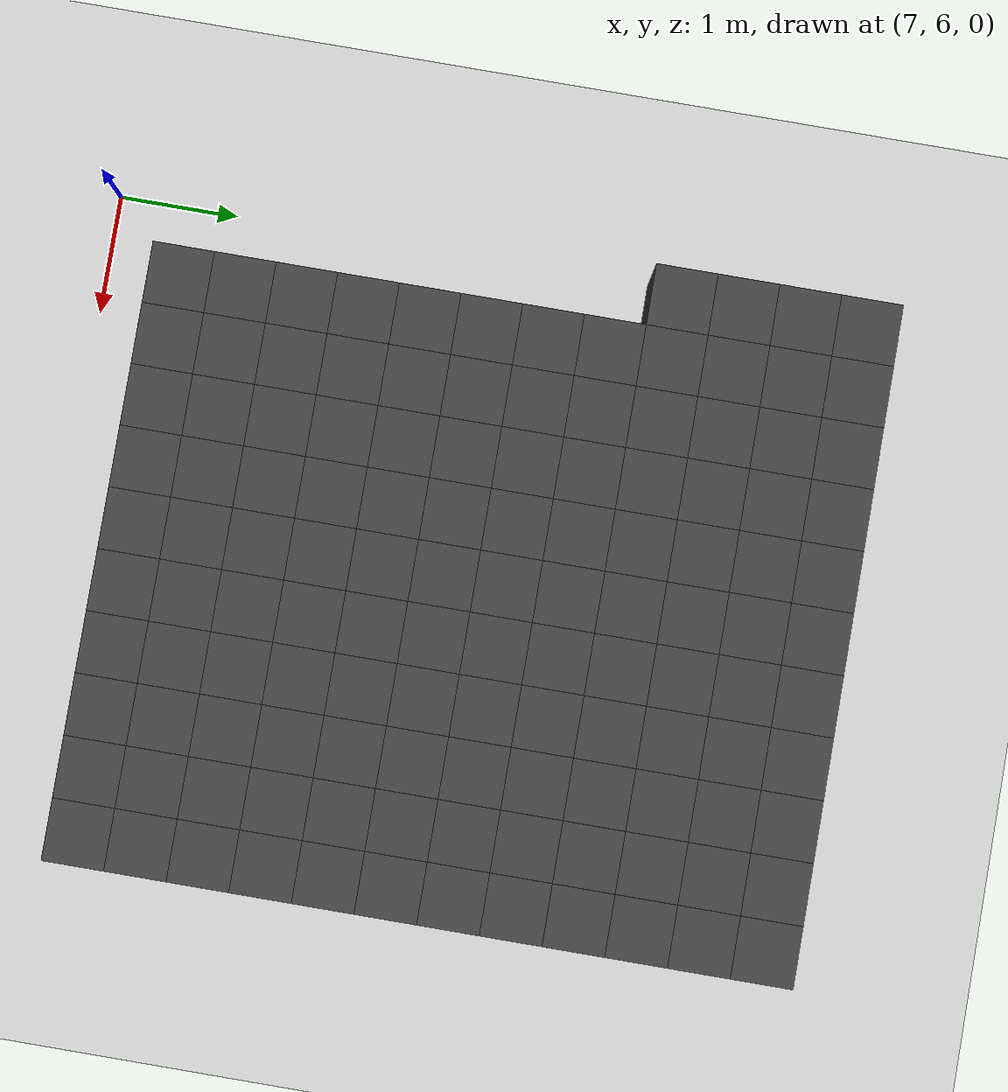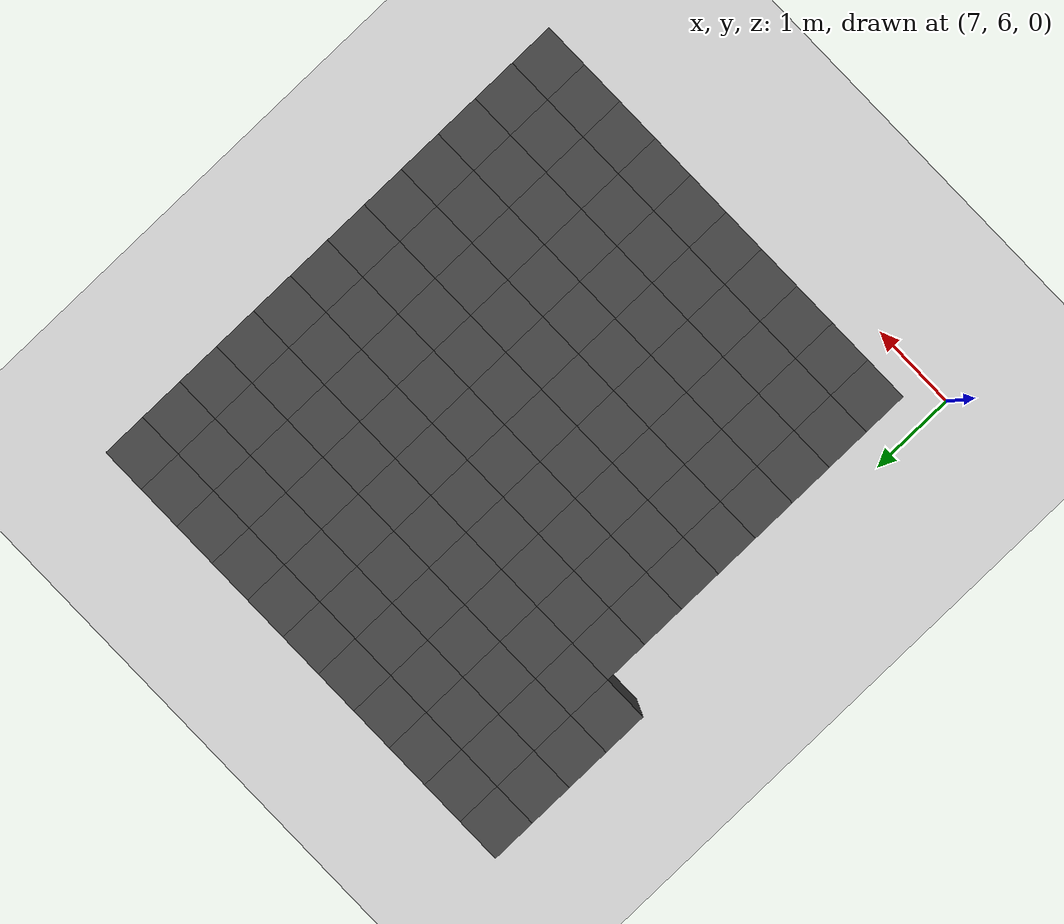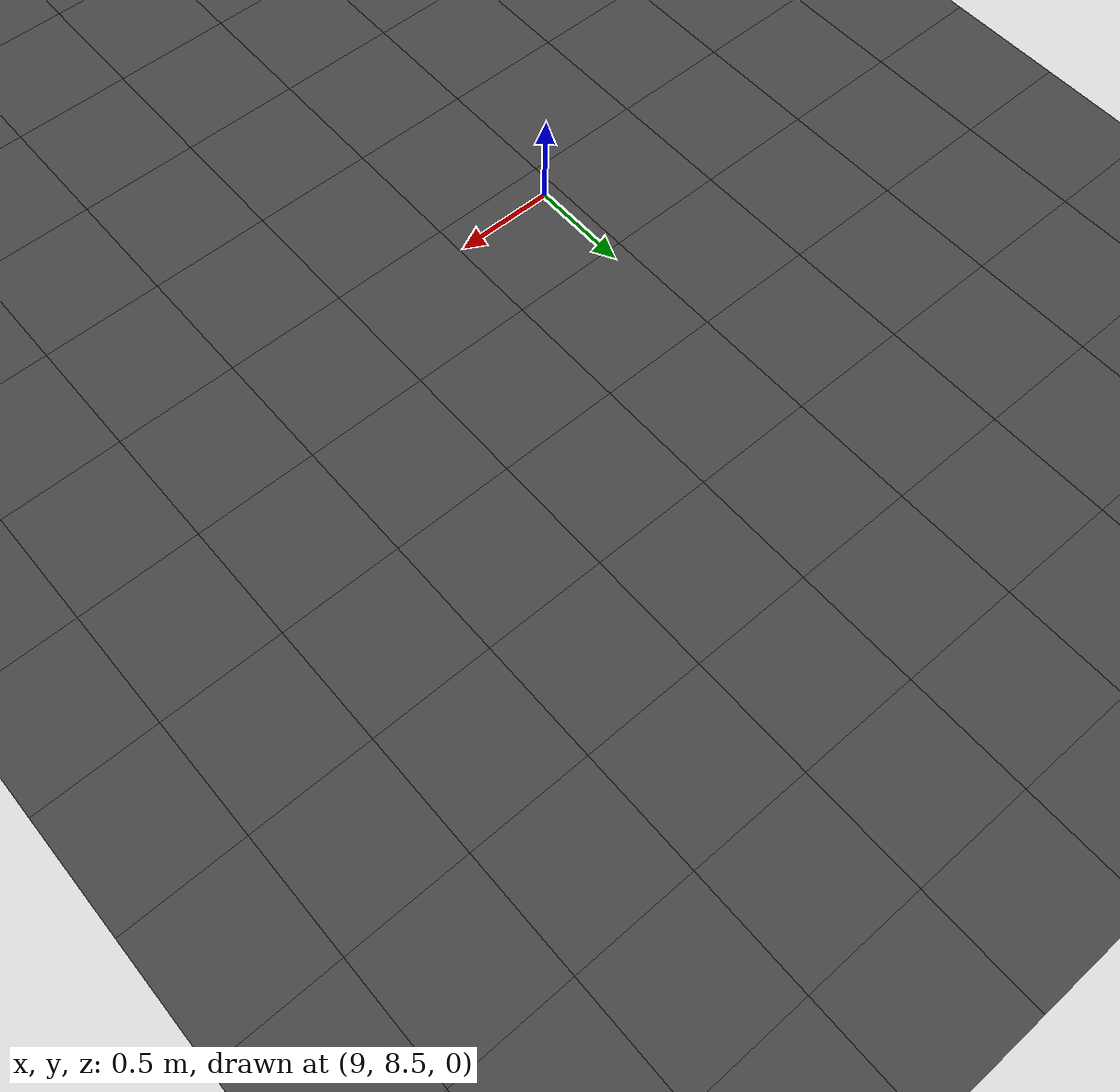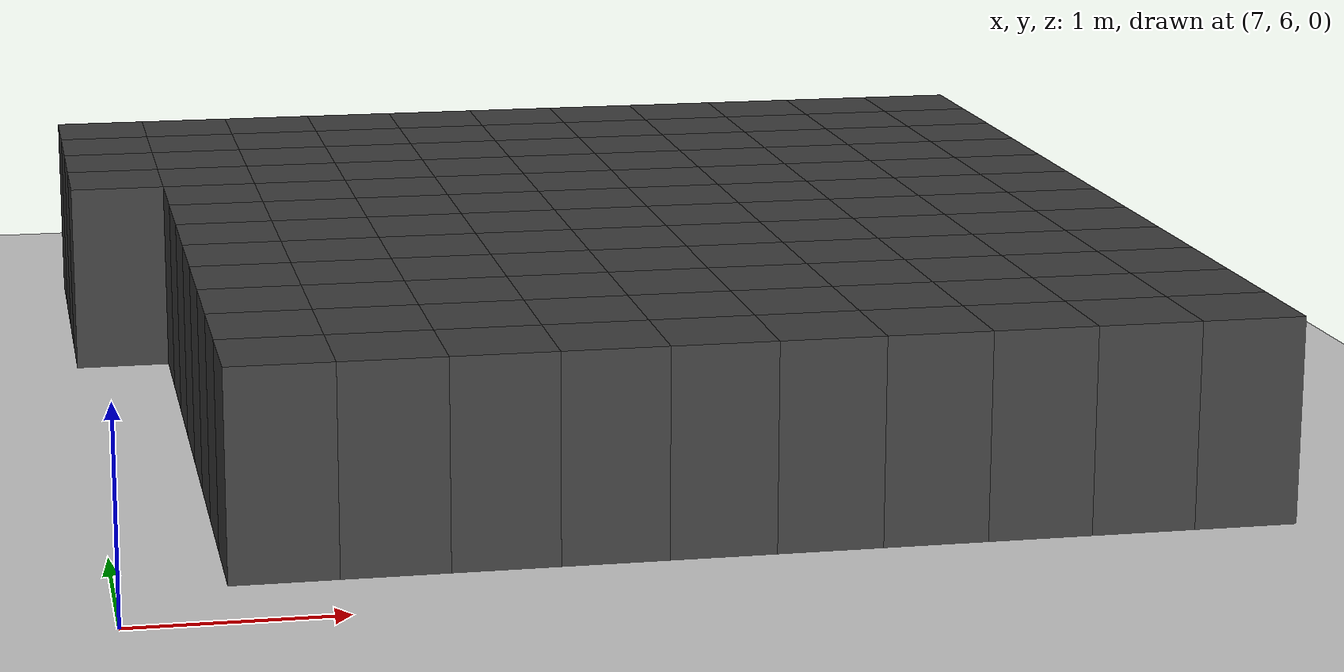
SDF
<sdf version="1.7">
 <world name="map_12818">
  <model name="ground_plane">
   <static>true</static>
   <link name="link">
    <collision name="collision">
     <geometry><plane><normal>0 0 1</normal><size>200 200</size></plane></geometry>
    </collision>
    <visual name="visual">
     <geometry><plane><normal>0 0 1</normal><size>200 200</size></plane></geometry>
     <material><ambient>0.8 0.8 0.8 1</ambient><diffuse>0.8 0.8 0.8 1</diffuse></material>
    </visual>
   </link>
  </model>
  <model name="maze_environment">
   <static>true</static>
   <link name="wall_39">
    <pose>7.250 12.250 0.500 0 0 0</pose>
    <collision name="col"><geometry><box><size>0.5 0.5 1.0</size></box></geometry></collision>
    <visual name="vis">
     <geometry><box><size>0.5 0.5 1.0</size></box></geometry>
     <material><ambient>0.15 0.15 0.15 1</ambient><diffuse>0.25 0.25 0.25 1</diffuse></material>
    </visual>
   </link>
   <link name="wall_40">
    <pose>7.750 12.250 0.500 0 0 0</pose>
    <collision name="col"><geometry><box><size>0.5 0.5 1.0</size></box></geometry></collision>
    <visual name="vis">
     <geometry><box><size>0.5 0.5 1.0</size></box></geometry>
     <material><ambient>0.15 0.15 0.15 1</ambient><diffuse>0.25 0.25 0.25 1</diffuse></material>
    </visual>
   </link>
   <link name="wall_41">
    <pose>8.250 12.250 0.500 0 0 0</pose>
    <collision name="col"><geometry><box><size>0.5 0.5 1.0</size></box></geometry></collision>
    <visual name="vis">
     <geometry><box><size>0.5 0.5 1.0</size></box></geometry>
     <material><ambient>0.15 0.15 0.15 1</ambient><diffuse>0.25 0.25 0.25 1</diffuse></material>
    </visual>
   </link>
   <link name="wall_42">
    <pose>8.750 12.250 0.500 0 0 0</pose>
    <collision name="col"><geometry><box><size>0.5 0.5 1.0</size></box></geometry></collision>
    <visual name="vis">
     <geometry><box><size>0.5 0.5 1.0</size></box></geometry>
     <material><ambient>0.15 0.15 0.15 1</ambient><diffuse>0.25 0.25 0.25 1</diffuse></material>
    </visual>
   </link>
   <link name="wall_43">
    <pose>9.250 12.250 0.500 0 0 0</pose>
    <collision name="col"><geometry><box><size>0.5 0.5 1.0</size></box></geometry></collision>
    <visual name="vis">
     <geometry><box><size>0.5 0.5 1.0</size></box></geometry>
     <material><ambient>0.15 0.15 0.15 1</ambient><diffuse>0.25 0.25 0.25 1</diffuse></material>
    </visual>
   </link>
   <link name="wall_44">
    <pose>9.750 12.250 0.500 0 0 0</pose>
    <collision name="col"><geometry><box><size>0.5 0.5 1.0</size></box></geometry></collision>
    <visual name="vis">
     <geometry><box><size>0.5 0.5 1.0</size></box></geometry>
     <material><ambient>0.15 0.15 0.15 1</ambient><diffuse>0.25 0.25 0.25 1</diffuse></material>
    </visual>
   </link>
   <link name="wall_45">
    <pose>10.250 12.250 0.500 0 0 0</pose>
    <collision name="col"><geometry><box><size>0.5 0.5 1.0</size></box></geometry></collision>
    <visual name="vis">
     <geometry><box><size>0.5 0.5 1.0</size></box></geometry>
     <material><ambient>0.15 0.15 0.15 1</ambient><diffuse>0.25 0.25 0.25 1</diffuse></material>
    </visual>
   </link>
   <link name="wall_46">
    <pose>10.750 12.250 0.500 0 0 0</pose>
    <collision name="col"><geometry><box><size>0.5 0.5 1.0</size></box></geometry></collision>
    <visual name="vis">
     <geometry><box><size>0.5 0.5 1.0</size></box></geometry>
     <material><ambient>0.15 0.15 0.15 1</ambient><diffuse>0.25 0.25 0.25 1</diffuse></material>
    </visual>
   </link>
   <link name="wall_47">
    <pose>11.250 12.250 0.500 0 0 0</pose>
    <collision name="col"><geometry><box><size>0.5 0.5 1.0</size></box></geometry></collision>
    <visual name="vis">
     <geometry><box><size>0.5 0.5 1.0</size></box></geometry>
     <material><ambient>0.15 0.15 0.15 1</ambient><diffuse>0.25 0.25 0.25 1</diffuse></material>
    </visual>
   </link>
   <link name="wall_48">
    <pose>11.750 12.250 0.500 0 0 0</pose>
    <collision name="col"><geometry><box><size>0.5 0.5 1.0</size></box></geometry></collision>
    <visual name="vis">
     <geometry><box><size>0.5 0.5 1.0</size></box></geometry>
     <material><ambient>0.15 0.15 0.15 1</ambient><diffuse>0.25 0.25 0.25 1</diffuse></material>
    </visual>
   </link>
   <link name="wall_49">
    <pose>12.250 12.250 0.500 0 0 0</pose>
    <collision name="col"><geometry><box><size>0.5 0.5 1.0</size></box></geometry></collision>
    <visual name="vis">
     <geometry><box><size>0.5 0.5 1.0</size></box></geometry>
     <material><ambient>0.15 0.15 0.15 1</ambient><diffuse>0.25 0.25 0.25 1</diffuse></material>
    </visual>
   </link>
   <link name="wall_86">
    <pose>7.250 11.750 0.500 0 0 0</pose>
    <collision name="col"><geometry><box><size>0.5 0.5 1.0</size></box></geometry></collision>
    <visual name="vis">
     <geometry><box><size>0.5 0.5 1.0</size></box></geometry>
     <material><ambient>0.15 0.15 0.15 1</ambient><diffuse>0.25 0.25 0.25 1</diffuse></material>
    </visual>
   </link>
   <link name="wall_87">
    <pose>7.750 11.750 0.500 0 0 0</pose>
    <collision name="col"><geometry><box><size>0.5 0.5 1.0</size></box></geometry></collision>
    <visual name="vis">
     <geometry><box><size>0.5 0.5 1.0</size></box></geometry>
     <material><ambient>0.15 0.15 0.15 1</ambient><diffuse>0.25 0.25 0.25 1</diffuse></material>
    </visual>
   </link>
   <link name="wall_88">
    <pose>8.250 11.750 0.500 0 0 0</pose>
    <collision name="col"><geometry><box><size>0.5 0.5 1.0</size></box></geometry></collision>
    <visual name="vis">
     <geometry><box><size>0.5 0.5 1.0</size></box></geometry>
     <material><ambient>0.15 0.15 0.15 1</ambient><diffuse>0.25 0.25 0.25 1</diffuse></material>
    </visual>
   </link>
   <link name="wall_89">
    <pose>8.750 11.750 0.500 0 0 0</pose>
    <collision name="col"><geometry><box><size>0.5 0.5 1.0</size></box></geometry></collision>
    <visual name="vis">
     <geometry><box><size>0.5 0.5 1.0</size></box></geometry>
     <material><ambient>0.15 0.15 0.15 1</ambient><diffuse>0.25 0.25 0.25 1</diffuse></material>
    </visual>
   </link>
   <link name="wall_90">
    <pose>9.250 11.750 0.500 0 0 0</pose>
    <collision name="col"><geometry><box><size>0.5 0.5 1.0</size></box></geometry></collision>
    <visual name="vis">
     <geometry><box><size>0.5 0.5 1.0</size></box></geometry>
     <material><ambient>0.15 0.15 0.15 1</ambient><diffuse>0.25 0.25 0.25 1</diffuse></material>
    </visual>
   </link>
   <link name="wall_91">
    <pose>9.750 11.750 0.500 0 0 0</pose>
    <collision name="col"><geometry><box><size>0.5 0.5 1.0</size></box></geometry></collision>
    <visual name="vis">
     <geometry><box><size>0.5 0.5 1.0</size></box></geometry>
     <material><ambient>0.15 0.15 0.15 1</ambient><diffuse>0.25 0.25 0.25 1</diffuse></material>
    </visual>
   </link>
   <link name="wall_92">
    <pose>10.250 11.750 0.500 0 0 0</pose>
    <collision name="col"><geometry><box><size>0.5 0.5 1.0</size></box></geometry></collision>
    <visual name="vis">
     <geometry><box><size>0.5 0.5 1.0</size></box></geometry>
     <material><ambient>0.15 0.15 0.15 1</ambient><diffuse>0.25 0.25 0.25 1</diffuse></material>
    </visual>
   </link>
   <link name="wall_93">
    <pose>10.750 11.750 0.500 0 0 0</pose>
    <collision name="col"><geometry><box><size>0.5 0.5 1.0</size></box></geometry></collision>
    <visual name="vis">
     <geometry><box><size>0.5 0.5 1.0</size></box></geometry>
     <material><ambient>0.15 0.15 0.15 1</ambient><diffuse>0.25 0.25 0.25 1</diffuse></material>
    </visual>
   </link>
   <link name="wall_94">
    <pose>11.250 11.750 0.500 0 0 0</pose>
    <collision name="col"><geometry><box><size>0.5 0.5 1.0</size></box></geometry></collision>
    <visual name="vis">
     <geometry><box><size>0.5 0.5 1.0</size></box></geometry>
     <material><ambient>0.15 0.15 0.15 1</ambient><diffuse>0.25 0.25 0.25 1</diffuse></material>
    </visual>
   </link>
   <link name="wall_95">
    <pose>11.750 11.750 0.500 0 0 0</pose>
    <collision name="col"><geometry><box><size>0.5 0.5 1.0</size></box></geometry></collision>
    <visual name="vis">
     <geometry><box><size>0.5 0.5 1.0</size></box></geometry>
     <material><ambient>0.15 0.15 0.15 1</ambient><diffuse>0.25 0.25 0.25 1</diffuse></material>
    </visual>
   </link>
   <link name="wall_96">
    <pose>12.250 11.750 0.500 0 0 0</pose>
    <collision name="col"><geometry><box><size>0.5 0.5 1.0</size></box></geometry></collision>
    <visual name="vis">
     <geometry><box><size>0.5 0.5 1.0</size></box></geometry>
     <material><ambient>0.15 0.15 0.15 1</ambient><diffuse>0.25 0.25 0.25 1</diffuse></material>
    </visual>
   </link>
   <link name="wall_133">
    <pose>7.250 11.250 0.500 0 0 0</pose>
    <collision name="col"><geometry><box><size>0.5 0.5 1.0</size></box></geometry></collision>
    <visual name="vis">
     <geometry><box><size>0.5 0.5 1.0</size></box></geometry>
     <material><ambient>0.15 0.15 0.15 1</ambient><diffuse>0.25 0.25 0.25 1</diffuse></material>
    </visual>
   </link>
   <link name="wall_134">
    <pose>7.750 11.250 0.500 0 0 0</pose>
    <collision name="col"><geometry><box><size>0.5 0.5 1.0</size></box></geometry></collision>
    <visual name="vis">
     <geometry><box><size>0.5 0.5 1.0</size></box></geometry>
     <material><ambient>0.15 0.15 0.15 1</ambient><diffuse>0.25 0.25 0.25 1</diffuse></material>
    </visual>
   </link>
   <link name="wall_135">
    <pose>8.250 11.250 0.500 0 0 0</pose>
    <collision name="col"><geometry><box><size>0.5 0.5 1.0</size></box></geometry></collision>
    <visual name="vis">
     <geometry><box><size>0.5 0.5 1.0</size></box></geometry>
     <material><ambient>0.15 0.15 0.15 1</ambient><diffuse>0.25 0.25 0.25 1</diffuse></material>
    </visual>
   </link>
   <link name="wall_136">
    <pose>8.750 11.250 0.500 0 0 0</pose>
    <collision name="col"><geometry><box><size>0.5 0.5 1.0</size></box></geometry></collision>
    <visual name="vis">
     <geometry><box><size>0.5 0.5 1.0</size></box></geometry>
     <material><ambient>0.15 0.15 0.15 1</ambient><diffuse>0.25 0.25 0.25 1</diffuse></material>
    </visual>
   </link>
   <link name="wall_137">
    <pose>9.250 11.250 0.500 0 0 0</pose>
    <collision name="col"><geometry><box><size>0.5 0.5 1.0</size></box></geometry></collision>
    <visual name="vis">
     <geometry><box><size>0.5 0.5 1.0</size></box></geometry>
     <material><ambient>0.15 0.15 0.15 1</ambient><diffuse>0.25 0.25 0.25 1</diffuse></material>
    </visual>
   </link>
   <link name="wall_138">
    <pose>9.750 11.250 0.500 0 0 0</pose>
    <collision name="col"><geometry><box><size>0.5 0.5 1.0</size></box></geometry></collision>
    <visual name="vis">
     <geometry><box><size>0.5 0.5 1.0</size></box></geometry>
     <material><ambient>0.15 0.15 0.15 1</ambient><diffuse>0.25 0.25 0.25 1</diffuse></material>
    </visual>
   </link>
   <link name="wall_139">
    <pose>10.250 11.250 0.500 0 0 0</pose>
    <collision name="col"><geometry><box><size>0.5 0.5 1.0</size></box></geometry></collision>
    <visual name="vis">
     <geometry><box><size>0.5 0.5 1.0</size></box></geometry>
     <material><ambient>0.15 0.15 0.15 1</ambient><diffuse>0.25 0.25 0.25 1</diffuse></material>
    </visual>
   </link>
   <link name="wall_140">
    <pose>10.750 11.250 0.500 0 0 0</pose>
    <collision name="col"><geometry><box><size>0.5 0.5 1.0</size></box></geometry></collision>
    <visual name="vis">
     <geometry><box><size>0.5 0.5 1.0</size></box></geometry>
     <material><ambient>0.15 0.15 0.15 1</ambient><diffuse>0.25 0.25 0.25 1</diffuse></material>
    </visual>
   </link>
   <link name="wall_141">
    <pose>11.250 11.250 0.500 0 0 0</pose>
    <collision name="col"><geometry><box><size>0.5 0.5 1.0</size></box></geometry></collision>
    <visual name="vis">
     <geometry><box><size>0.5 0.5 1.0</size></box></geometry>
     <material><ambient>0.15 0.15 0.15 1</ambient><diffuse>0.25 0.25 0.25 1</diffuse></material>
    </visual>
   </link>
   <link name="wall_142">
    <pose>11.750 11.250 0.500 0 0 0</pose>
    <collision name="col"><geometry><box><size>0.5 0.5 1.0</size></box></geometry></collision>
    <visual name="vis">
     <geometry><box><size>0.5 0.5 1.0</size></box></geometry>
     <material><ambient>0.15 0.15 0.15 1</ambient><diffuse>0.25 0.25 0.25 1</diffuse></material>
    </visual>
   </link>
   <link name="wall_143">
    <pose>12.250 11.250 0.500 0 0 0</pose>
    <collision name="col"><geometry><box><size>0.5 0.5 1.0</size></box></geometry></collision>
    <visual name="vis">
     <geometry><box><size>0.5 0.5 1.0</size></box></geometry>
     <material><ambient>0.15 0.15 0.15 1</ambient><diffuse>0.25 0.25 0.25 1</diffuse></material>
    </visual>
   </link>
   <link name="wall_180">
    <pose>7.250 10.750 0.500 0 0 0</pose>
    <collision name="col"><geometry><box><size>0.5 0.5 1.0</size></box></geometry></collision>
    <visual name="vis">
     <geometry><box><size>0.5 0.5 1.0</size></box></geometry>
     <material><ambient>0.15 0.15 0.15 1</ambient><diffuse>0.25 0.25 0.25 1</diffuse></material>
    </visual>
   </link>
   <link name="wall_181">
    <pose>7.750 10.750 0.500 0 0 0</pose>
    <collision name="col"><geometry><box><size>0.5 0.5 1.0</size></box></geometry></collision>
    <visual name="vis">
     <geometry><box><size>0.5 0.5 1.0</size></box></geometry>
     <material><ambient>0.15 0.15 0.15 1</ambient><diffuse>0.25 0.25 0.25 1</diffuse></material>
    </visual>
   </link>
   <link name="wall_182">
    <pose>8.250 10.750 0.500 0 0 0</pose>
    <collision name="col"><geometry><box><size>0.5 0.5 1.0</size></box></geometry></collision>
    <visual name="vis">
     <geometry><box><size>0.5 0.5 1.0</size></box></geometry>
     <material><ambient>0.15 0.15 0.15 1</ambient><diffuse>0.25 0.25 0.25 1</diffuse></material>
    </visual>
   </link>
   <link name="wall_183">
    <pose>8.750 10.750 0.500 0 0 0</pose>
    <collision name="col"><geometry><box><size>0.5 0.5 1.0</size></box></geometry></collision>
    <visual name="vis">
     <geometry><box><size>0.5 0.5 1.0</size></box></geometry>
     <material><ambient>0.15 0.15 0.15 1</ambient><diffuse>0.25 0.25 0.25 1</diffuse></material>
    </visual>
   </link>
   <link name="wall_184">
    <pose>9.250 10.750 0.500 0 0 0</pose>
    <collision name="col"><geometry><box><size>0.5 0.5 1.0</size></box></geometry></collision>
    <visual name="vis">
     <geometry><box><size>0.5 0.5 1.0</size></box></geometry>
     <material><ambient>0.15 0.15 0.15 1</ambient><diffuse>0.25 0.25 0.25 1</diffuse></material>
    </visual>
   </link>
   <link name="wall_185">
    <pose>9.750 10.750 0.500 0 0 0</pose>
    <collision name="col"><geometry><box><size>0.5 0.5 1.0</size></box></geometry></collision>
    <visual name="vis">
     <geometry><box><size>0.5 0.5 1.0</size></box></geometry>
     <material><ambient>0.15 0.15 0.15 1</ambient><diffuse>0.25 0.25 0.25 1</diffuse></material>
    </visual>
   </link>
   <link name="wall_186">
    <pose>10.250 10.750 0.500 0 0 0</pose>
    <collision name="col"><geometry><box><size>0.5 0.5 1.0</size></box></geometry></collision>
    <visual name="vis">
     <geometry><box><size>0.5 0.5 1.0</size></box></geometry>
     <material><ambient>0.15 0.15 0.15 1</ambient><diffuse>0.25 0.25 0.25 1</diffuse></material>
    </visual>
   </link>
   <link name="wall_187">
    <pose>10.750 10.750 0.500 0 0 0</pose>
    <collision name="col"><geometry><box><size>0.5 0.5 1.0</size></box></geometry></collision>
    <visual name="vis">
     <geometry><box><size>0.5 0.5 1.0</size></box></geometry>
     <material><ambient>0.15 0.15 0.15 1</ambient><diffuse>0.25 0.25 0.25 1</diffuse></material>
    </visual>
   </link>
   <link name="wall_188">
    <pose>11.250 10.750 0.500 0 0 0</pose>
    <collision name="col"><geometry><box><size>0.5 0.5 1.0</size></box></geometry></collision>
    <visual name="vis">
     <geometry><box><size>0.5 0.5 1.0</size></box></geometry>
     <material><ambient>0.15 0.15 0.15 1</ambient><diffuse>0.25 0.25 0.25 1</diffuse></material>
    </visual>
   </link>
   <link name="wall_189">
    <pose>11.750 10.750 0.500 0 0 0</pose>
    <collision name="col"><geometry><box><size>0.5 0.5 1.0</size></box></geometry></collision>
    <visual name="vis">
     <geometry><box><size>0.5 0.5 1.0</size></box></geometry>
     <material><ambient>0.15 0.15 0.15 1</ambient><diffuse>0.25 0.25 0.25 1</diffuse></material>
    </visual>
   </link>
   <link name="wall_190">
    <pose>12.250 10.750 0.500 0 0 0</pose>
    <collision name="col"><geometry><box><size>0.5 0.5 1.0</size></box></geometry></collision>
    <visual name="vis">
     <geometry><box><size>0.5 0.5 1.0</size></box></geometry>
     <material><ambient>0.15 0.15 0.15 1</ambient><diffuse>0.25 0.25 0.25 1</diffuse></material>
    </visual>
   </link>
   <link name="wall_230">
    <pose>7.750 10.250 0.500 0 0 0</pose>
    <collision name="col"><geometry><box><size>0.5 0.5 1.0</size></box></geometry></collision>
    <visual name="vis">
     <geometry><box><size>0.5 0.5 1.0</size></box></geometry>
     <material><ambient>0.15 0.15 0.15 1</ambient><diffuse>0.25 0.25 0.25 1</diffuse></material>
    </visual>
   </link>
   <link name="wall_231">
    <pose>8.250 10.250 0.500 0 0 0</pose>
    <collision name="col"><geometry><box><size>0.5 0.5 1.0</size></box></geometry></collision>
    <visual name="vis">
     <geometry><box><size>0.5 0.5 1.0</size></box></geometry>
     <material><ambient>0.15 0.15 0.15 1</ambient><diffuse>0.25 0.25 0.25 1</diffuse></material>
    </visual>
   </link>
   <link name="wall_232">
    <pose>8.750 10.250 0.500 0 0 0</pose>
    <collision name="col"><geometry><box><size>0.5 0.5 1.0</size></box></geometry></collision>
    <visual name="vis">
     <geometry><box><size>0.5 0.5 1.0</size></box></geometry>
     <material><ambient>0.15 0.15 0.15 1</ambient><diffuse>0.25 0.25 0.25 1</diffuse></material>
    </visual>
   </link>
   <link name="wall_233">
    <pose>9.250 10.250 0.500 0 0 0</pose>
    <collision name="col"><geometry><box><size>0.5 0.5 1.0</size></box></geometry></collision>
    <visual name="vis">
     <geometry><box><size>0.5 0.5 1.0</size></box></geometry>
     <material><ambient>0.15 0.15 0.15 1</ambient><diffuse>0.25 0.25 0.25 1</diffuse></material>
    </visual>
   </link>
   <link name="wall_234">
    <pose>9.750 10.250 0.500 0 0 0</pose>
    <collision name="col"><geometry><box><size>0.5 0.5 1.0</size></box></geometry></collision>
    <visual name="vis">
     <geometry><box><size>0.5 0.5 1.0</size></box></geometry>
     <material><ambient>0.15 0.15 0.15 1</ambient><diffuse>0.25 0.25 0.25 1</diffuse></material>
    </visual>
   </link>
   <link name="wall_235">
    <pose>10.250 10.250 0.500 0 0 0</pose>
    <collision name="col"><geometry><box><size>0.5 0.5 1.0</size></box></geometry></collision>
    <visual name="vis">
     <geometry><box><size>0.5 0.5 1.0</size></box></geometry>
     <material><ambient>0.15 0.15 0.15 1</ambient><diffuse>0.25 0.25 0.25 1</diffuse></material>
    </visual>
   </link>
   <link name="wall_236">
    <pose>10.750 10.250 0.500 0 0 0</pose>
    <collision name="col"><geometry><box><size>0.5 0.5 1.0</size></box></geometry></collision>
    <visual name="vis">
     <geometry><box><size>0.5 0.5 1.0</size></box></geometry>
     <material><ambient>0.15 0.15 0.15 1</ambient><diffuse>0.25 0.25 0.25 1</diffuse></material>
    </visual>
   </link>
   <link name="wall_237">
    <pose>11.250 10.250 0.500 0 0 0</pose>
    <collision name="col"><geometry><box><size>0.5 0.5 1.0</size></box></geometry></collision>
    <visual name="vis">
     <geometry><box><size>0.5 0.5 1.0</size></box></geometry>
     <material><ambient>0.15 0.15 0.15 1</ambient><diffuse>0.25 0.25 0.25 1</diffuse></material>
    </visual>
   </link>
   <link name="wall_238">
    <pose>11.750 10.250 0.500 0 0 0</pose>
    <collision name="col"><geometry><box><size>0.5 0.5 1.0</size></box></geometry></collision>
    <visual name="vis">
     <geometry><box><size>0.5 0.5 1.0</size></box></geometry>
     <material><ambient>0.15 0.15 0.15 1</ambient><diffuse>0.25 0.25 0.25 1</diffuse></material>
    </visual>
   </link>
   <link name="wall_239">
    <pose>12.250 10.250 0.500 0 0 0</pose>
    <collision name="col"><geometry><box><size>0.5 0.5 1.0</size></box></geometry></collision>
    <visual name="vis">
     <geometry><box><size>0.5 0.5 1.0</size></box></geometry>
     <material><ambient>0.15 0.15 0.15 1</ambient><diffuse>0.25 0.25 0.25 1</diffuse></material>
    </visual>
   </link>
   <link name="wall_279">
    <pose>7.750 9.750 0.500 0 0 0</pose>
    <collision name="col"><geometry><box><size>0.5 0.5 1.0</size></box></geometry></collision>
    <visual name="vis">
     <geometry><box><size>0.5 0.5 1.0</size></box></geometry>
     <material><ambient>0.15 0.15 0.15 1</ambient><diffuse>0.25 0.25 0.25 1</diffuse></material>
    </visual>
   </link>
   <link name="wall_280">
    <pose>8.250 9.750 0.500 0 0 0</pose>
    <collision name="col"><geometry><box><size>0.5 0.5 1.0</size></box></geometry></collision>
    <visual name="vis">
     <geometry><box><size>0.5 0.5 1.0</size></box></geometry>
     <material><ambient>0.15 0.15 0.15 1</ambient><diffuse>0.25 0.25 0.25 1</diffuse></material>
    </visual>
   </link>
   <link name="wall_281">
    <pose>8.750 9.750 0.500 0 0 0</pose>
    <collision name="col"><geometry><box><size>0.5 0.5 1.0</size></box></geometry></collision>
    <visual name="vis">
     <geometry><box><size>0.5 0.5 1.0</size></box></geometry>
     <material><ambient>0.15 0.15 0.15 1</ambient><diffuse>0.25 0.25 0.25 1</diffuse></material>
    </visual>
   </link>
   <link name="wall_282">
    <pose>9.250 9.750 0.500 0 0 0</pose>
    <collision name="col"><geometry><box><size>0.5 0.5 1.0</size></box></geometry></collision>
    <visual name="vis">
     <geometry><box><size>0.5 0.5 1.0</size></box></geometry>
     <material><ambient>0.15 0.15 0.15 1</ambient><diffuse>0.25 0.25 0.25 1</diffuse></material>
    </visual>
   </link>
   <link name="wall_283">
    <pose>9.750 9.750 0.500 0 0 0</pose>
    <collision name="col"><geometry><box><size>0.5 0.5 1.0</size></box></geometry></collision>
    <visual name="vis">
     <geometry><box><size>0.5 0.5 1.0</size></box></geometry>
     <material><ambient>0.15 0.15 0.15 1</ambient><diffuse>0.25 0.25 0.25 1</diffuse></material>
    </visual>
   </link>
   <link name="wall_284">
    <pose>10.250 9.750 0.500 0 0 0</pose>
    <collision name="col"><geometry><box><size>0.5 0.5 1.0</size></box></geometry></collision>
    <visual name="vis">
     <geometry><box><size>0.5 0.5 1.0</size></box></geometry>
     <material><ambient>0.15 0.15 0.15 1</ambient><diffuse>0.25 0.25 0.25 1</diffuse></material>
    </visual>
   </link>
   <link name="wall_285">
    <pose>10.750 9.750 0.500 0 0 0</pose>
    <collision name="col"><geometry><box><size>0.5 0.5 1.0</size></box></geometry></collision>
    <visual name="vis">
     <geometry><box><size>0.5 0.5 1.0</size></box></geometry>
     <material><ambient>0.15 0.15 0.15 1</ambient><diffuse>0.25 0.25 0.25 1</diffuse></material>
    </visual>
   </link>
   <link name="wall_286">
    <pose>11.250 9.750 0.500 0 0 0</pose>
    <collision name="col"><geometry><box><size>0.5 0.5 1.0</size></box></geometry></collision>
    <visual name="vis">
     <geometry><box><size>0.5 0.5 1.0</size></box></geometry>
     <material><ambient>0.15 0.15 0.15 1</ambient><diffuse>0.25 0.25 0.25 1</diffuse></material>
    </visual>
   </link>
   <link name="wall_287">
    <pose>11.750 9.750 0.500 0 0 0</pose>
    <collision name="col"><geometry><box><size>0.5 0.5 1.0</size></box></geometry></collision>
    <visual name="vis">
     <geometry><box><size>0.5 0.5 1.0</size></box></geometry>
     <material><ambient>0.15 0.15 0.15 1</ambient><diffuse>0.25 0.25 0.25 1</diffuse></material>
    </visual>
   </link>
   <link name="wall_288">
    <pose>12.250 9.750 0.500 0 0 0</pose>
    <collision name="col"><geometry><box><size>0.5 0.5 1.0</size></box></geometry></collision>
    <visual name="vis">
     <geometry><box><size>0.5 0.5 1.0</size></box></geometry>
     <material><ambient>0.15 0.15 0.15 1</ambient><diffuse>0.25 0.25 0.25 1</diffuse></material>
    </visual>
   </link>
   <link name="wall_328">
    <pose>7.750 9.250 0.500 0 0 0</pose>
    <collision name="col"><geometry><box><size>0.5 0.5 1.0</size></box></geometry></collision>
    <visual name="vis">
     <geometry><box><size>0.5 0.5 1.0</size></box></geometry>
     <material><ambient>0.15 0.15 0.15 1</ambient><diffuse>0.25 0.25 0.25 1</diffuse></material>
    </visual>
   </link>
   <link name="wall_329">
    <pose>8.250 9.250 0.500 0 0 0</pose>
    <collision name="col"><geometry><box><size>0.5 0.5 1.0</size></box></geometry></collision>
    <visual name="vis">
     <geometry><box><size>0.5 0.5 1.0</size></box></geometry>
     <material><ambient>0.15 0.15 0.15 1</ambient><diffuse>0.25 0.25 0.25 1</diffuse></material>
    </visual>
   </link>
   <link name="wall_330">
    <pose>8.750 9.250 0.500 0 0 0</pose>
    <collision name="col"><geometry><box><size>0.5 0.5 1.0</size></box></geometry></collision>
    <visual name="vis">
     <geometry><box><size>0.5 0.5 1.0</size></box></geometry>
     <material><ambient>0.15 0.15 0.15 1</ambient><diffuse>0.25 0.25 0.25 1</diffuse></material>
    </visual>
   </link>
   <link name="wall_331">
    <pose>9.250 9.250 0.500 0 0 0</pose>
    <collision name="col"><geometry><box><size>0.5 0.5 1.0</size></box></geometry></collision>
    <visual name="vis">
     <geometry><box><size>0.5 0.5 1.0</size></box></geometry>
     <material><ambient>0.15 0.15 0.15 1</ambient><diffuse>0.25 0.25 0.25 1</diffuse></material>
    </visual>
   </link>
   <link name="wall_332">
    <pose>9.750 9.250 0.500 0 0 0</pose>
    <collision name="col"><geometry><box><size>0.5 0.5 1.0</size></box></geometry></collision>
    <visual name="vis">
     <geometry><box><size>0.5 0.5 1.0</size></box></geometry>
     <material><ambient>0.15 0.15 0.15 1</ambient><diffuse>0.25 0.25 0.25 1</diffuse></material>
    </visual>
   </link>
   <link name="wall_333">
    <pose>10.250 9.250 0.500 0 0 0</pose>
    <collision name="col"><geometry><box><size>0.5 0.5 1.0</size></box></geometry></collision>
    <visual name="vis">
     <geometry><box><size>0.5 0.5 1.0</size></box></geometry>
     <material><ambient>0.15 0.15 0.15 1</ambient><diffuse>0.25 0.25 0.25 1</diffuse></material>
    </visual>
   </link>
   <link name="wall_334">
    <pose>10.750 9.250 0.500 0 0 0</pose>
    <collision name="col"><geometry><box><size>0.5 0.5 1.0</size></box></geometry></collision>
    <visual name="vis">
     <geometry><box><size>0.5 0.5 1.0</size></box></geometry>
     <material><ambient>0.15 0.15 0.15 1</ambient><diffuse>0.25 0.25 0.25 1</diffuse></material>
    </visual>
   </link>
   <link name="wall_335">
    <pose>11.250 9.250 0.500 0 0 0</pose>
    <collision name="col"><geometry><box><size>0.5 0.5 1.0</size></box></geometry></collision>
    <visual name="vis">
     <geometry><box><size>0.5 0.5 1.0</size></box></geometry>
     <material><ambient>0.15 0.15 0.15 1</ambient><diffuse>0.25 0.25 0.25 1</diffuse></material>
    </visual>
   </link>
   <link name="wall_336">
    <pose>11.750 9.250 0.500 0 0 0</pose>
    <collision name="col"><geometry><box><size>0.5 0.5 1.0</size></box></geometry></collision>
    <visual name="vis">
     <geometry><box><size>0.5 0.5 1.0</size></box></geometry>
     <material><ambient>0.15 0.15 0.15 1</ambient><diffuse>0.25 0.25 0.25 1</diffuse></material>
    </visual>
   </link>
   <link name="wall_337">
    <pose>12.250 9.250 0.500 0 0 0</pose>
    <collision name="col"><geometry><box><size>0.5 0.5 1.0</size></box></geometry></collision>
    <visual name="vis">
     <geometry><box><size>0.5 0.5 1.0</size></box></geometry>
     <material><ambient>0.15 0.15 0.15 1</ambient><diffuse>0.25 0.25 0.25 1</diffuse></material>
    </visual>
   </link>
   <link name="wall_373">
    <pose>7.750 8.750 0.500 0 0 0</pose>
    <collision name="col"><geometry><box><size>0.5 0.5 1.0</size></box></geometry></collision>
    <visual name="vis">
     <geometry><box><size>0.5 0.5 1.0</size></box></geometry>
     <material><ambient>0.15 0.15 0.15 1</ambient><diffuse>0.25 0.25 0.25 1</diffuse></material>
    </visual>
   </link>
   <link name="wall_374">
    <pose>8.250 8.750 0.500 0 0 0</pose>
    <collision name="col"><geometry><box><size>0.5 0.5 1.0</size></box></geometry></collision>
    <visual name="vis">
     <geometry><box><size>0.5 0.5 1.0</size></box></geometry>
     <material><ambient>0.15 0.15 0.15 1</ambient><diffuse>0.25 0.25 0.25 1</diffuse></material>
    </visual>
   </link>
   <link name="wall_375">
    <pose>8.750 8.750 0.500 0 0 0</pose>
    <collision name="col"><geometry><box><size>0.5 0.5 1.0</size></box></geometry></collision>
    <visual name="vis">
     <geometry><box><size>0.5 0.5 1.0</size></box></geometry>
     <material><ambient>0.15 0.15 0.15 1</ambient><diffuse>0.25 0.25 0.25 1</diffuse></material>
    </visual>
   </link>
   <link name="wall_376">
    <pose>9.250 8.750 0.500 0 0 0</pose>
    <collision name="col"><geometry><box><size>0.5 0.5 1.0</size></box></geometry></collision>
    <visual name="vis">
     <geometry><box><size>0.5 0.5 1.0</size></box></geometry>
     <material><ambient>0.15 0.15 0.15 1</ambient><diffuse>0.25 0.25 0.25 1</diffuse></material>
    </visual>
   </link>
   <link name="wall_377">
    <pose>9.750 8.750 0.500 0 0 0</pose>
    <collision name="col"><geometry><box><size>0.5 0.5 1.0</size></box></geometry></collision>
    <visual name="vis">
     <geometry><box><size>0.5 0.5 1.0</size></box></geometry>
     <material><ambient>0.15 0.15 0.15 1</ambient><diffuse>0.25 0.25 0.25 1</diffuse></material>
    </visual>
   </link>
   <link name="wall_378">
    <pose>10.250 8.750 0.500 0 0 0</pose>
    <collision name="col"><geometry><box><size>0.5 0.5 1.0</size></box></geometry></collision>
    <visual name="vis">
     <geometry><box><size>0.5 0.5 1.0</size></box></geometry>
     <material><ambient>0.15 0.15 0.15 1</ambient><diffuse>0.25 0.25 0.25 1</diffuse></material>
    </visual>
   </link>
   <link name="wall_379">
    <pose>10.750 8.750 0.500 0 0 0</pose>
    <collision name="col"><geometry><box><size>0.5 0.5 1.0</size></box></geometry></collision>
    <visual name="vis">
     <geometry><box><size>0.5 0.5 1.0</size></box></geometry>
     <material><ambient>0.15 0.15 0.15 1</ambient><diffuse>0.25 0.25 0.25 1</diffuse></material>
    </visual>
   </link>
   <link name="wall_380">
    <pose>11.250 8.750 0.500 0 0 0</pose>
    <collision name="col"><geometry><box><size>0.5 0.5 1.0</size></box></geometry></collision>
    <visual name="vis">
     <geometry><box><size>0.5 0.5 1.0</size></box></geometry>
     <material><ambient>0.15 0.15 0.15 1</ambient><diffuse>0.25 0.25 0.25 1</diffuse></material>
    </visual>
   </link>
   <link name="wall_381">
    <pose>11.750 8.750 0.500 0 0 0</pose>
    <collision name="col"><geometry><box><size>0.5 0.5 1.0</size></box></geometry></collision>
    <visual name="vis">
     <geometry><box><size>0.5 0.5 1.0</size></box></geometry>
     <material><ambient>0.15 0.15 0.15 1</ambient><diffuse>0.25 0.25 0.25 1</diffuse></material>
    </visual>
   </link>
   <link name="wall_382">
    <pose>12.250 8.750 0.500 0 0 0</pose>
    <collision name="col"><geometry><box><size>0.5 0.5 1.0</size></box></geometry></collision>
    <visual name="vis">
     <geometry><box><size>0.5 0.5 1.0</size></box></geometry>
     <material><ambient>0.15 0.15 0.15 1</ambient><diffuse>0.25 0.25 0.25 1</diffuse></material>
    </visual>
   </link>
   <link name="wall_418">
    <pose>7.750 8.250 0.500 0 0 0</pose>
    <collision name="col"><geometry><box><size>0.5 0.5 1.0</size></box></geometry></collision>
    <visual name="vis">
     <geometry><box><size>0.5 0.5 1.0</size></box></geometry>
     <material><ambient>0.15 0.15 0.15 1</ambient><diffuse>0.25 0.25 0.25 1</diffuse></material>
    </visual>
   </link>
   <link name="wall_419">
    <pose>8.250 8.250 0.500 0 0 0</pose>
    <collision name="col"><geometry><box><size>0.5 0.5 1.0</size></box></geometry></collision>
    <visual name="vis">
     <geometry><box><size>0.5 0.5 1.0</size></box></geometry>
     <material><ambient>0.15 0.15 0.15 1</ambient><diffuse>0.25 0.25 0.25 1</diffuse></material>
    </visual>
   </link>
   <link name="wall_420">
    <pose>8.750 8.250 0.500 0 0 0</pose>
    <collision name="col"><geometry><box><size>0.5 0.5 1.0</size></box></geometry></collision>
    <visual name="vis">
     <geometry><box><size>0.5 0.5 1.0</size></box></geometry>
     <material><ambient>0.15 0.15 0.15 1</ambient><diffuse>0.25 0.25 0.25 1</diffuse></material>
    </visual>
   </link>
   <link name="wall_421">
    <pose>9.250 8.250 0.500 0 0 0</pose>
    <collision name="col"><geometry><box><size>0.5 0.5 1.0</size></box></geometry></collision>
    <visual name="vis">
     <geometry><box><size>0.5 0.5 1.0</size></box></geometry>
     <material><ambient>0.15 0.15 0.15 1</ambient><diffuse>0.25 0.25 0.25 1</diffuse></material>
    </visual>
   </link>
   <link name="wall_422">
    <pose>9.750 8.250 0.500 0 0 0</pose>
    <collision name="col"><geometry><box><size>0.5 0.5 1.0</size></box></geometry></collision>
    <visual name="vis">
     <geometry><box><size>0.5 0.5 1.0</size></box></geometry>
     <material><ambient>0.15 0.15 0.15 1</ambient><diffuse>0.25 0.25 0.25 1</diffuse></material>
    </visual>
   </link>
   <link name="wall_423">
    <pose>10.250 8.250 0.500 0 0 0</pose>
    <collision name="col"><geometry><box><size>0.5 0.5 1.0</size></box></geometry></collision>
    <visual name="vis">
     <geometry><box><size>0.5 0.5 1.0</size></box></geometry>
     <material><ambient>0.15 0.15 0.15 1</ambient><diffuse>0.25 0.25 0.25 1</diffuse></material>
    </visual>
   </link>
   <link name="wall_424">
    <pose>10.750 8.250 0.500 0 0 0</pose>
    <collision name="col"><geometry><box><size>0.5 0.5 1.0</size></box></geometry></collision>
    <visual name="vis">
     <geometry><box><size>0.5 0.5 1.0</size></box></geometry>
     <material><ambient>0.15 0.15 0.15 1</ambient><diffuse>0.25 0.25 0.25 1</diffuse></material>
    </visual>
   </link>
   <link name="wall_425">
    <pose>11.250 8.250 0.500 0 0 0</pose>
    <collision name="col"><geometry><box><size>0.5 0.5 1.0</size></box></geometry></collision>
    <visual name="vis">
     <geometry><box><size>0.5 0.5 1.0</size></box></geometry>
     <material><ambient>0.15 0.15 0.15 1</ambient><diffuse>0.25 0.25 0.25 1</diffuse></material>
    </visual>
   </link>
   <link name="wall_426">
    <pose>11.750 8.250 0.500 0 0 0</pose>
    <collision name="col"><geometry><box><size>0.5 0.5 1.0</size></box></geometry></collision>
    <visual name="vis">
     <geometry><box><size>0.5 0.5 1.0</size></box></geometry>
     <material><ambient>0.15 0.15 0.15 1</ambient><diffuse>0.25 0.25 0.25 1</diffuse></material>
    </visual>
   </link>
   <link name="wall_427">
    <pose>12.250 8.250 0.500 0 0 0</pose>
    <collision name="col"><geometry><box><size>0.5 0.5 1.0</size></box></geometry></collision>
    <visual name="vis">
     <geometry><box><size>0.5 0.5 1.0</size></box></geometry>
     <material><ambient>0.15 0.15 0.15 1</ambient><diffuse>0.25 0.25 0.25 1</diffuse></material>
    </visual>
   </link>
   <link name="wall_459">
    <pose>7.750 7.750 0.500 0 0 0</pose>
    <collision name="col"><geometry><box><size>0.5 0.5 1.0</size></box></geometry></collision>
    <visual name="vis">
     <geometry><box><size>0.5 0.5 1.0</size></box></geometry>
     <material><ambient>0.15 0.15 0.15 1</ambient><diffuse>0.25 0.25 0.25 1</diffuse></material>
    </visual>
   </link>
   <link name="wall_460">
    <pose>8.250 7.750 0.500 0 0 0</pose>
    <collision name="col"><geometry><box><size>0.5 0.5 1.0</size></box></geometry></collision>
    <visual name="vis">
     <geometry><box><size>0.5 0.5 1.0</size></box></geometry>
     <material><ambient>0.15 0.15 0.15 1</ambient><diffuse>0.25 0.25 0.25 1</diffuse></material>
    </visual>
   </link>
   <link name="wall_461">
    <pose>8.750 7.750 0.500 0 0 0</pose>
    <collision name="col"><geometry><box><size>0.5 0.5 1.0</size></box></geometry></collision>
    <visual name="vis">
     <geometry><box><size>0.5 0.5 1.0</size></box></geometry>
     <material><ambient>0.15 0.15 0.15 1</ambient><diffuse>0.25 0.25 0.25 1</diffuse></material>
    </visual>
   </link>
   <link name="wall_462">
    <pose>9.250 7.750 0.500 0 0 0</pose>
    <collision name="col"><geometry><box><size>0.5 0.5 1.0</size></box></geometry></collision>
    <visual name="vis">
     <geometry><box><size>0.5 0.5 1.0</size></box></geometry>
     <material><ambient>0.15 0.15 0.15 1</ambient><diffuse>0.25 0.25 0.25 1</diffuse></material>
    </visual>
   </link>
   <link name="wall_463">
    <pose>9.750 7.750 0.500 0 0 0</pose>
    <collision name="col"><geometry><box><size>0.5 0.5 1.0</size></box></geometry></collision>
    <visual name="vis">
     <geometry><box><size>0.5 0.5 1.0</size></box></geometry>
     <material><ambient>0.15 0.15 0.15 1</ambient><diffuse>0.25 0.25 0.25 1</diffuse></material>
    </visual>
   </link>
   <link name="wall_464">
    <pose>10.250 7.750 0.500 0 0 0</pose>
    <collision name="col"><geometry><box><size>0.5 0.5 1.0</size></box></geometry></collision>
    <visual name="vis">
     <geometry><box><size>0.5 0.5 1.0</size></box></geometry>
     <material><ambient>0.15 0.15 0.15 1</ambient><diffuse>0.25 0.25 0.25 1</diffuse></material>
    </visual>
   </link>
   <link name="wall_465">
    <pose>10.750 7.750 0.500 0 0 0</pose>
    <collision name="col"><geometry><box><size>0.5 0.5 1.0</size></box></geometry></collision>
    <visual name="vis">
     <geometry><box><size>0.5 0.5 1.0</size></box></geometry>
     <material><ambient>0.15 0.15 0.15 1</ambient><diffuse>0.25 0.25 0.25 1</diffuse></material>
    </visual>
   </link>
   <link name="wall_466">
    <pose>11.250 7.750 0.500 0 0 0</pose>
    <collision name="col"><geometry><box><size>0.5 0.5 1.0</size></box></geometry></collision>
    <visual name="vis">
     <geometry><box><size>0.5 0.5 1.0</size></box></geometry>
     <material><ambient>0.15 0.15 0.15 1</ambient><diffuse>0.25 0.25 0.25 1</diffuse></material>
    </visual>
   </link>
   <link name="wall_467">
    <pose>11.750 7.750 0.500 0 0 0</pose>
    <collision name="col"><geometry><box><size>0.5 0.5 1.0</size></box></geometry></collision>
    <visual name="vis">
     <geometry><box><size>0.5 0.5 1.0</size></box></geometry>
     <material><ambient>0.15 0.15 0.15 1</ambient><diffuse>0.25 0.25 0.25 1</diffuse></material>
    </visual>
   </link>
   <link name="wall_468">
    <pose>12.250 7.750 0.500 0 0 0</pose>
    <collision name="col"><geometry><box><size>0.5 0.5 1.0</size></box></geometry></collision>
    <visual name="vis">
     <geometry><box><size>0.5 0.5 1.0</size></box></geometry>
     <material><ambient>0.15 0.15 0.15 1</ambient><diffuse>0.25 0.25 0.25 1</diffuse></material>
    </visual>
   </link>
   <link name="wall_503">
    <pose>7.750 7.250 0.500 0 0 0</pose>
    <collision name="col"><geometry><box><size>0.5 0.5 1.0</size></box></geometry></collision>
    <visual name="vis">
     <geometry><box><size>0.5 0.5 1.0</size></box></geometry>
     <material><ambient>0.15 0.15 0.15 1</ambient><diffuse>0.25 0.25 0.25 1</diffuse></material>
    </visual>
   </link>
   <link name="wall_504">
    <pose>8.250 7.250 0.500 0 0 0</pose>
    <collision name="col"><geometry><box><size>0.5 0.5 1.0</size></box></geometry></collision>
    <visual name="vis">
     <geometry><box><size>0.5 0.5 1.0</size></box></geometry>
     <material><ambient>0.15 0.15 0.15 1</ambient><diffuse>0.25 0.25 0.25 1</diffuse></material>
    </visual>
   </link>
   <link name="wall_505">
    <pose>8.750 7.250 0.500 0 0 0</pose>
    <collision name="col"><geometry><box><size>0.5 0.5 1.0</size></box></geometry></collision>
    <visual name="vis">
     <geometry><box><size>0.5 0.5 1.0</size></box></geometry>
     <material><ambient>0.15 0.15 0.15 1</ambient><diffuse>0.25 0.25 0.25 1</diffuse></material>
    </visual>
   </link>
   <link name="wall_506">
    <pose>9.250 7.250 0.500 0 0 0</pose>
    <collision name="col"><geometry><box><size>0.5 0.5 1.0</size></box></geometry></collision>
    <visual name="vis">
     <geometry><box><size>0.5 0.5 1.0</size></box></geometry>
     <material><ambient>0.15 0.15 0.15 1</ambient><diffuse>0.25 0.25 0.25 1</diffuse></material>
    </visual>
   </link>
   <link name="wall_507">
    <pose>9.750 7.250 0.500 0 0 0</pose>
    <collision name="col"><geometry><box><size>0.5 0.5 1.0</size></box></geometry></collision>
    <visual name="vis">
     <geometry><box><size>0.5 0.5 1.0</size></box></geometry>
     <material><ambient>0.15 0.15 0.15 1</ambient><diffuse>0.25 0.25 0.25 1</diffuse></material>
    </visual>
   </link>
   <link name="wall_508">
    <pose>10.250 7.250 0.500 0 0 0</pose>
    <collision name="col"><geometry><box><size>0.5 0.5 1.0</size></box></geometry></collision>
    <visual name="vis">
     <geometry><box><size>0.5 0.5 1.0</size></box></geometry>
     <material><ambient>0.15 0.15 0.15 1</ambient><diffuse>0.25 0.25 0.25 1</diffuse></material>
    </visual>
   </link>
   <link name="wall_509">
    <pose>10.750 7.250 0.500 0 0 0</pose>
    <collision name="col"><geometry><box><size>0.5 0.5 1.0</size></box></geometry></collision>
    <visual name="vis">
     <geometry><box><size>0.5 0.5 1.0</size></box></geometry>
     <material><ambient>0.15 0.15 0.15 1</ambient><diffuse>0.25 0.25 0.25 1</diffuse></material>
    </visual>
   </link>
   <link name="wall_510">
    <pose>11.250 7.250 0.500 0 0 0</pose>
    <collision name="col"><geometry><box><size>0.5 0.5 1.0</size></box></geometry></collision>
    <visual name="vis">
     <geometry><box><size>0.5 0.5 1.0</size></box></geometry>
     <material><ambient>0.15 0.15 0.15 1</ambient><diffuse>0.25 0.25 0.25 1</diffuse></material>
    </visual>
   </link>
   <link name="wall_511">
    <pose>11.750 7.250 0.500 0 0 0</pose>
    <collision name="col"><geometry><box><size>0.5 0.5 1.0</size></box></geometry></collision>
    <visual name="vis">
     <geometry><box><size>0.5 0.5 1.0</size></box></geometry>
     <material><ambient>0.15 0.15 0.15 1</ambient><diffuse>0.25 0.25 0.25 1</diffuse></material>
    </visual>
   </link>
   <link name="wall_512">
    <pose>12.250 7.250 0.500 0 0 0</pose>
    <collision name="col"><geometry><box><size>0.5 0.5 1.0</size></box></geometry></collision>
    <visual name="vis">
     <geometry><box><size>0.5 0.5 1.0</size></box></geometry>
     <material><ambient>0.15 0.15 0.15 1</ambient><diffuse>0.25 0.25 0.25 1</diffuse></material>
    </visual>
   </link>
   <link name="wall_551">
    <pose>7.750 6.750 0.500 0 0 0</pose>
    <collision name="col"><geometry><box><size>0.5 0.5 1.0</size></box></geometry></collision>
    <visual name="vis">
     <geometry><box><size>0.5 0.5 1.0</size></box></geometry>
     <material><ambient>0.15 0.15 0.15 1</ambient><diffuse>0.25 0.25 0.25 1</diffuse></material>
    </visual>
   </link>
   <link name="wall_552">
    <pose>8.250 6.750 0.500 0 0 0</pose>
    <collision name="col"><geometry><box><size>0.5 0.5 1.0</size></box></geometry></collision>
    <visual name="vis">
     <geometry><box><size>0.5 0.5 1.0</size></box></geometry>
     <material><ambient>0.15 0.15 0.15 1</ambient><diffuse>0.25 0.25 0.25 1</diffuse></material>
    </visual>
   </link>
   <link name="wall_553">
    <pose>8.750 6.750 0.500 0 0 0</pose>
    <collision name="col"><geometry><box><size>0.5 0.5 1.0</size></box></geometry></collision>
    <visual name="vis">
     <geometry><box><size>0.5 0.5 1.0</size></box></geometry>
     <material><ambient>0.15 0.15 0.15 1</ambient><diffuse>0.25 0.25 0.25 1</diffuse></material>
    </visual>
   </link>
   <link name="wall_554">
    <pose>9.250 6.750 0.500 0 0 0</pose>
    <collision name="col"><geometry><box><size>0.5 0.5 1.0</size></box></geometry></collision>
    <visual name="vis">
     <geometry><box><size>0.5 0.5 1.0</size></box></geometry>
     <material><ambient>0.15 0.15 0.15 1</ambient><diffuse>0.25 0.25 0.25 1</diffuse></material>
    </visual>
   </link>
   <link name="wall_555">
    <pose>9.750 6.750 0.500 0 0 0</pose>
    <collision name="col"><geometry><box><size>0.5 0.5 1.0</size></box></geometry></collision>
    <visual name="vis">
     <geometry><box><size>0.5 0.5 1.0</size></box></geometry>
     <material><ambient>0.15 0.15 0.15 1</ambient><diffuse>0.25 0.25 0.25 1</diffuse></material>
    </visual>
   </link>
   <link name="wall_556">
    <pose>10.250 6.750 0.500 0 0 0</pose>
    <collision name="col"><geometry><box><size>0.5 0.5 1.0</size></box></geometry></collision>
    <visual name="vis">
     <geometry><box><size>0.5 0.5 1.0</size></box></geometry>
     <material><ambient>0.15 0.15 0.15 1</ambient><diffuse>0.25 0.25 0.25 1</diffuse></material>
    </visual>
   </link>
   <link name="wall_557">
    <pose>10.750 6.750 0.500 0 0 0</pose>
    <collision name="col"><geometry><box><size>0.5 0.5 1.0</size></box></geometry></collision>
    <visual name="vis">
     <geometry><box><size>0.5 0.5 1.0</size></box></geometry>
     <material><ambient>0.15 0.15 0.15 1</ambient><diffuse>0.25 0.25 0.25 1</diffuse></material>
    </visual>
   </link>
   <link name="wall_558">
    <pose>11.250 6.750 0.500 0 0 0</pose>
    <collision name="col"><geometry><box><size>0.5 0.5 1.0</size></box></geometry></collision>
    <visual name="vis">
     <geometry><box><size>0.5 0.5 1.0</size></box></geometry>
     <material><ambient>0.15 0.15 0.15 1</ambient><diffuse>0.25 0.25 0.25 1</diffuse></material>
    </visual>
   </link>
   <link name="wall_559">
    <pose>11.750 6.750 0.500 0 0 0</pose>
    <collision name="col"><geometry><box><size>0.5 0.5 1.0</size></box></geometry></collision>
    <visual name="vis">
     <geometry><box><size>0.5 0.5 1.0</size></box></geometry>
     <material><ambient>0.15 0.15 0.15 1</ambient><diffuse>0.25 0.25 0.25 1</diffuse></material>
    </visual>
   </link>
   <link name="wall_560">
    <pose>12.250 6.750 0.500 0 0 0</pose>
    <collision name="col"><geometry><box><size>0.5 0.5 1.0</size></box></geometry></collision>
    <visual name="vis">
     <geometry><box><size>0.5 0.5 1.0</size></box></geometry>
     <material><ambient>0.15 0.15 0.15 1</ambient><diffuse>0.25 0.25 0.25 1</diffuse></material>
    </visual>
   </link>
  </model>
 </world>
</sdf>
